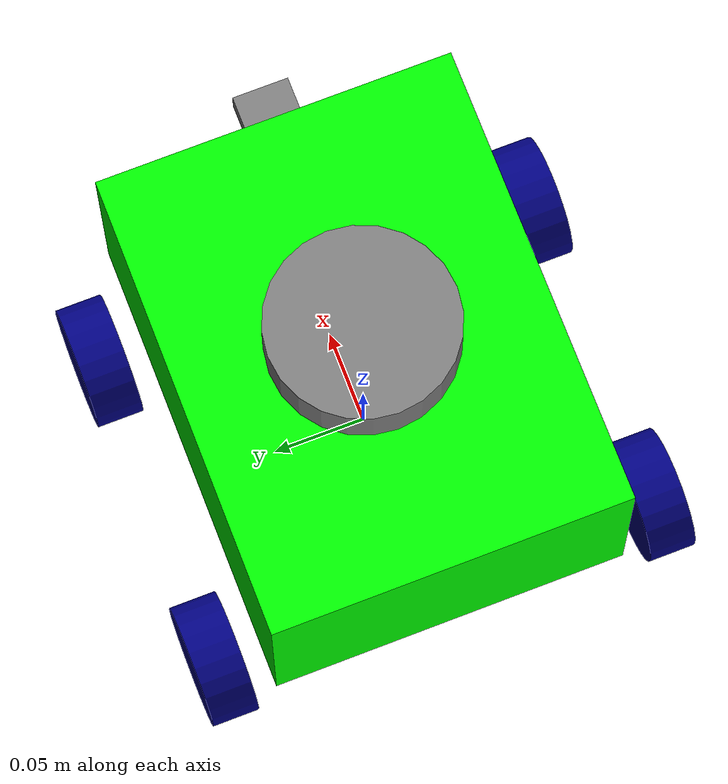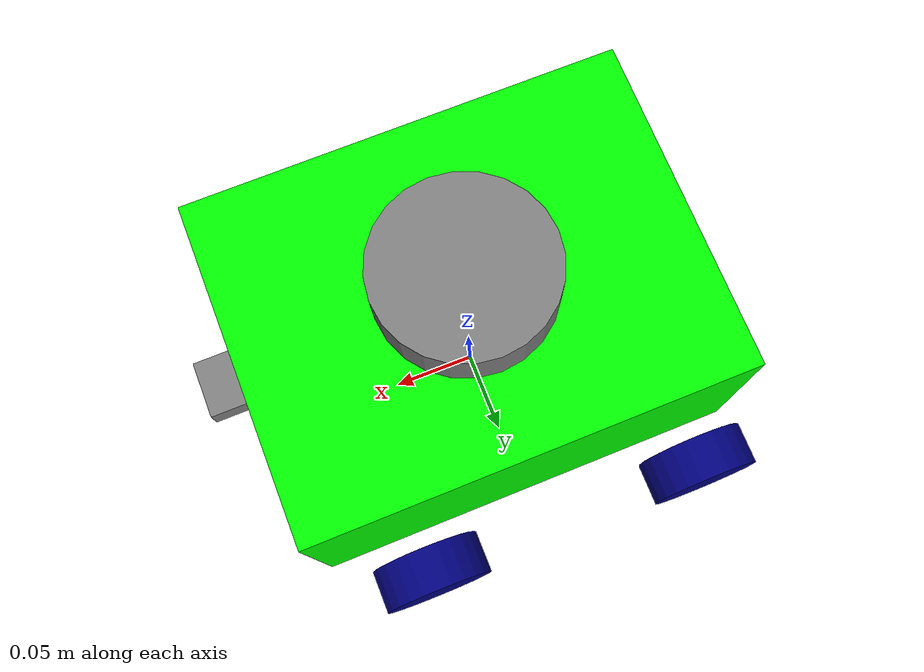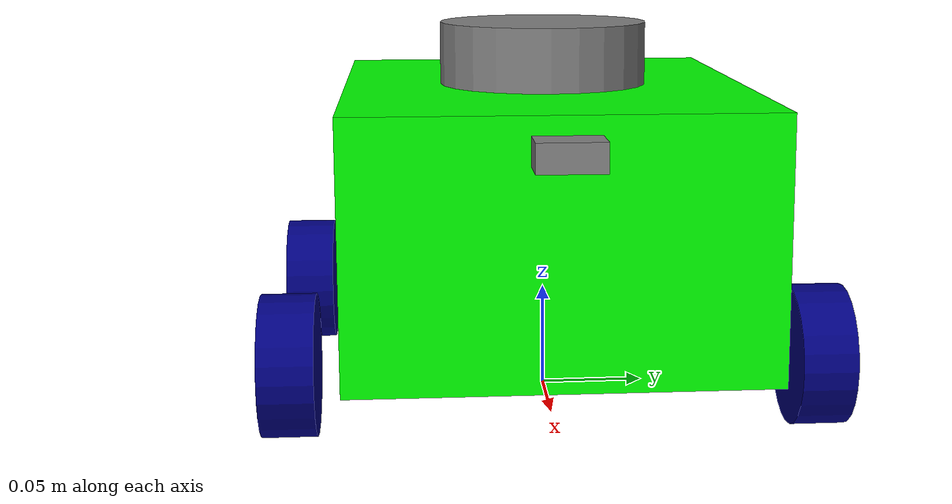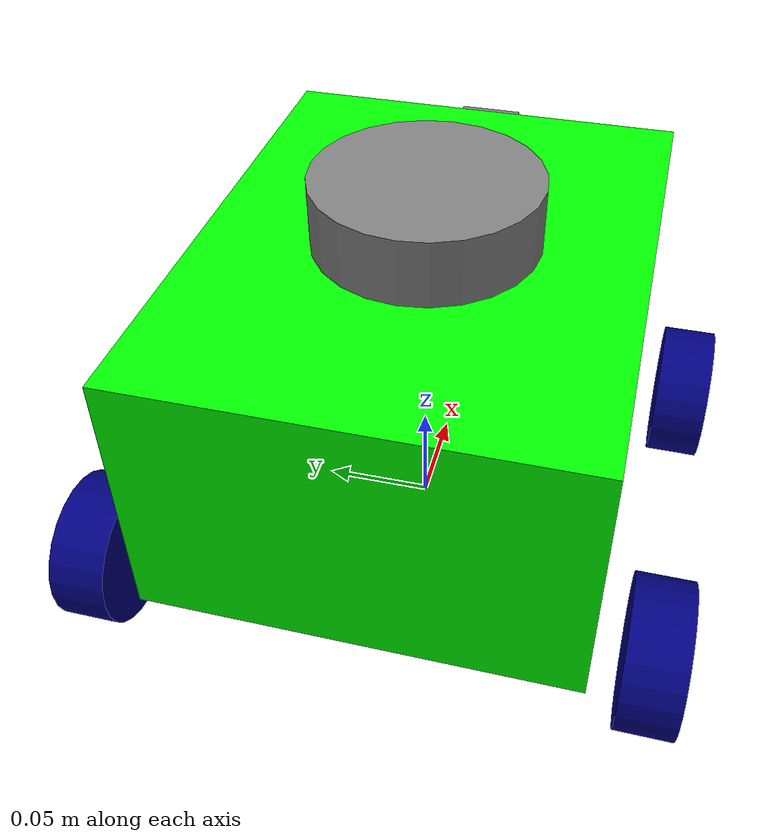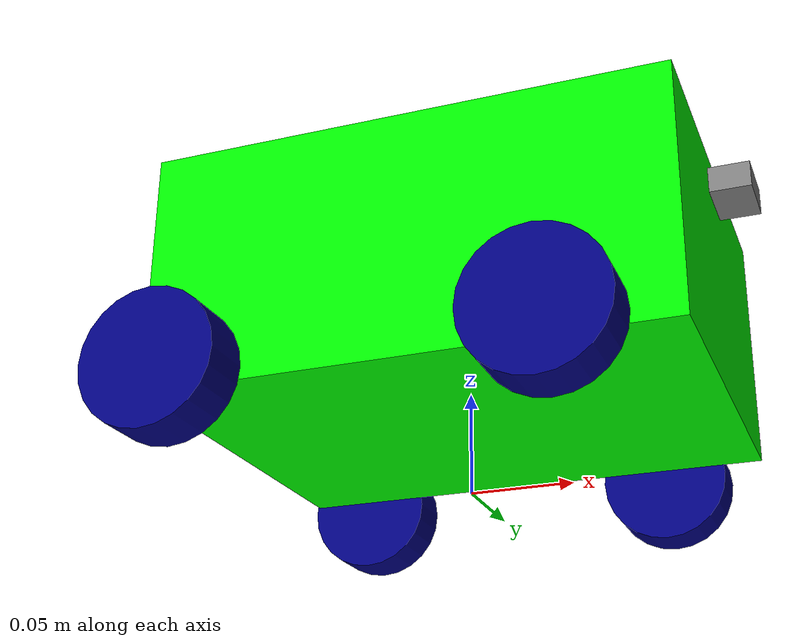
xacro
<?xml version="1.0"?>
<robot name="jetracer" xmlns:xacro="http://www.ros.org/wiki/xacro">

    <xacro:property name="base_length" value="0.2499"/>
    <xacro:property name="base_width" value="0.1922"/>
    <xacro:property name="base_height" value="0.12"/>
    <xacro:property name="wheel_radius" value="0.0325"/>
    <xacro:property name="wheel_length" value="0.025"/>

    <xacro:macro name="wheel" params="position side sign">
        <joint name="${position}_${side}_wheel_joint" type="continuous">
            <parent link="base_link"/>
            <child link="${position}_${side}_wheel"/>
            <origin xyz="${ base_length/3.5 if position=='front' else -0.1 } ${sign * base_width * 0.63} -0.06" rpy="0 0 0"/>
            <axis xyz="0 1 0"/>
        </joint>
        <link name="${position}_${side}_wheel">
            <visual>
                <geometry>
                    <cylinder radius="${wheel_radius}" length="${wheel_length}"/>
                </geometry>
                <origin xyz="0 0 0" rpy="${pi/2.0} 0 0"/>
                <material name="blue"/>
            </visual>
            <collision>
                <geometry>
                    <cylinder radius="${wheel_radius}" length="${wheel_length}"/>
                </geometry>
                <origin xyz="0 0 0" rpy="${pi/2.0} 0 0"/>
            </collision>
            <xacro:cylinder_inertial m="0.3" radius="${wheel_radius}" length="${wheel_length}" o_xyz="0 0 0" o_rpy="${pi/2.0} 0 0"/>
        </link>
    </xacro:macro>

    <xacro:macro name="wheel_link" params="position side sign">
        <joint name="${position}_${side}_wheel_joint" type="fixed">
            <parent link="base_link"/>
            <child link="${position}_${side}_wheel"/>
            <origin xyz="${ base_length/3.5 if position=='front' else -0.1 } ${sign * base_width * 0.63} -0.06" rpy="0 0 0"/>
            <axis xyz="0 1 0"/>
        </joint>
        <link name="${position}_${side}_wheel">
            <visual>
                <geometry>
                    <cylinder radius="${wheel_radius}" length="${wheel_length}"/>
                </geometry>
                <origin xyz="0 0 0" rpy="${pi/2.0} 0 0"/>
                <material name="blue"/>
            </visual>
            <collision>
                <geometry>
                    <cylinder radius="${wheel_radius}" length="${wheel_length}"/>
                </geometry>
                <origin xyz="0 0 0" rpy="${pi/2.0} 0 0"/>
            </collision>
            <xacro:cylinder_inertial m="0.3" radius="${wheel_radius}" length="${wheel_length}" o_xyz="0 0 0" o_rpy="${pi/2.0} 0 0"/>
        </link>
    </xacro:macro>

    <xacro:include filename= "common_properties.xacro"/>
    <xacro:include filename="jetracer_gazebo.xacro"/>

    <link name="base_footprint"/>

    <joint name="base_joint" type="fixed">
        <parent link="base_footprint"/>
        <child link="base_link"/>
        <origin xyz="0 0 0.0925" rpy="0 0 0"/>
    </joint>

    <link name="base_link">
        <visual>
            <geometry>
                <box size="${base_length} ${base_width} ${base_height}" />
            </geometry>
            <origin xyz="0 0 0" rpy="0 0 0" />
            <material name="green" />
        </visual>
        <collision>
            <geometry>
                <box size="${base_length} ${base_width} ${base_height}" />
            </geometry>
            <origin xyz="0 0 0" rpy="0 0 0" />
        </collision>
        <xacro:box_inertial m="1.2" x="${base_length}" y="${base_width}" z="${base_height}" o_xyz="0 0 0" o_rpy="0 0 0"/>
    </link>

    <joint name="base_scan_joint" type="fixed">
        <parent link="base_link"/>
        <child link="base_scan"/>
        <origin xyz="0 0 0.07" rpy="0 0 0"/>
    </joint>

    <link name="base_scan">
        <visual>
            <geometry>
                <cylinder radius="0.05" length="0.04"/>
            </geometry>
            <origin xyz="0 0 0" rpy="0 0 0"/>
            <material name="grey" />
        </visual>
        <collision>
            <geometry>
                <cylinder radius="0.05" length="0.04"/>
            </geometry>
            <origin xyz="0 0 0" rpy="0 0 0"/>
        </collision>
        <xacro:cylinder_inertial m="0.1" radius="0.05" length="0.04" o_xyz="0 0 0" o_rpy="0 0 0"/>
    </link>

    <link name="camera">
	  <visual>
	    <geometry>
	      <box size="0.03 0.03 0.013"/>
	    </geometry>
	     <origin xyz="0 0 0" rpy="0 0 0" />
	    <material name="grey"/>
	  </visual>
      <collision>
        <geometry>
          <box size="0.03 0.03 0.013"/>
        </geometry>
         <origin xyz="0 0 0" rpy="0 0 0" />
      </collision>
      <xacro:box_inertial m="0.1" x="0.03" y="0.03" z="0.013" o_xyz="0 0 0" o_rpy="0 0 0"/>
    </link>

   <joint name="camera_joint" type="fixed">
	  <parent link="base_link"/>
	  <child link="camera"/>
	  <origin xyz="0.13 0 0.045" rpy="0 0 0"/>
   </joint>

    <xacro:wheel position="front" side="left" sign="1"/>

    <xacro:wheel position="front" side="right" sign="-1"/>

    <xacro:wheel position="base" side="left" sign="1"/>

    <xacro:wheel position="base" side="right" sign="-1"/>

</robot>

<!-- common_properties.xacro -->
<robot xmlns:xacro="http://www.ros.org/wiki/xacro">

    <material name="grey">
        <color rgba="0.5 0.5 0.5 1" />
    </material>

    <material name="black">
        <color rgba="0.0 0.0 0.0 1.0"/>
    </material>

    <material name="blue">
        <color rgba="0 0 0.5 1" />
    </material>

    <material name="green">
      	<color rgba="0 1 0 1"/>
    </material>
    <material name="red">
        <color rgba="1 0 0 1" />
    </material>

    <material name="white">
        <color rgba="1 1 1 1" />
    </material>

    <xacro:macro name="box_inertial" params="m x y z o_xyz o_rpy">
        <inertial>
            <mass value="${m}"/>
            <origin xyz="${o_xyz}" rpy="${o_rpy}"/>
            <inertia ixx="${m/12.0*(y*y + z*z)}"
                     ixy="0"
                     ixz="0"
                     iyy="${m/12.0*(x*x + z*z)}"
                     iyz="0"
                     izz="${m/12.0*(x*x + y*y)}"/>
        </inertial>
    </xacro:macro>

    <xacro:macro name="cylinder_inertial" params="m r l o_xyz o_rpy">
        <inertial>
            <mass value="${m}"/>
            <origin xyz="${o_xyz}" rpy="${o_rpy}"/>
            <inertia ixx="${m/12.0*(3*r*r + l*l)}"
                     ixy="0"
                     ixz="0"
                     iyy="${m/12.0*(3*r*r + l*l)}"
                     iyz="0"
                     izz="${m*r*r/2.0}"/>
        </inertial>
    </xacro:macro>

</robot>
